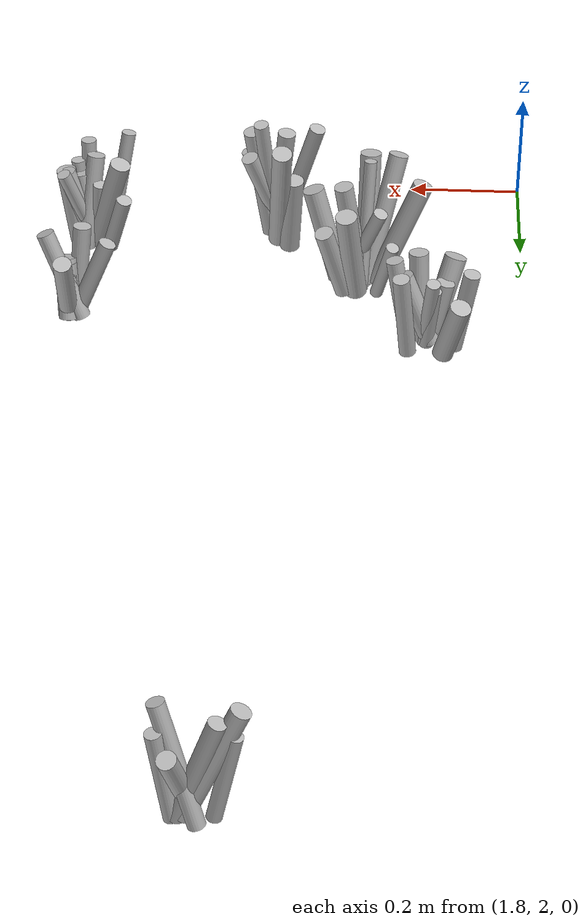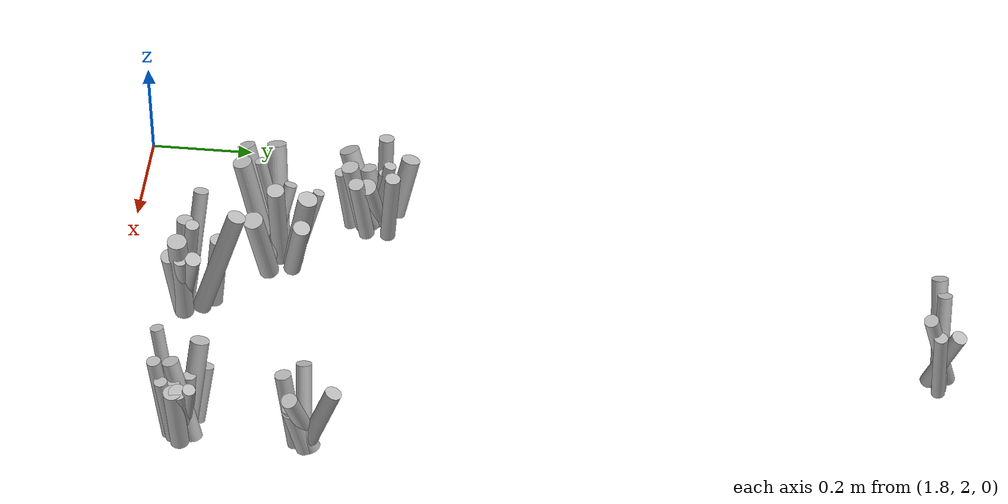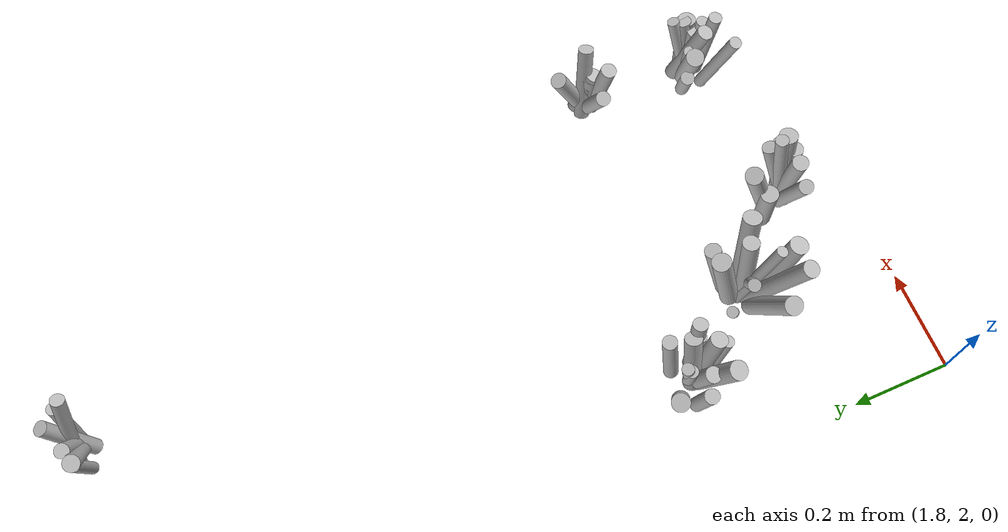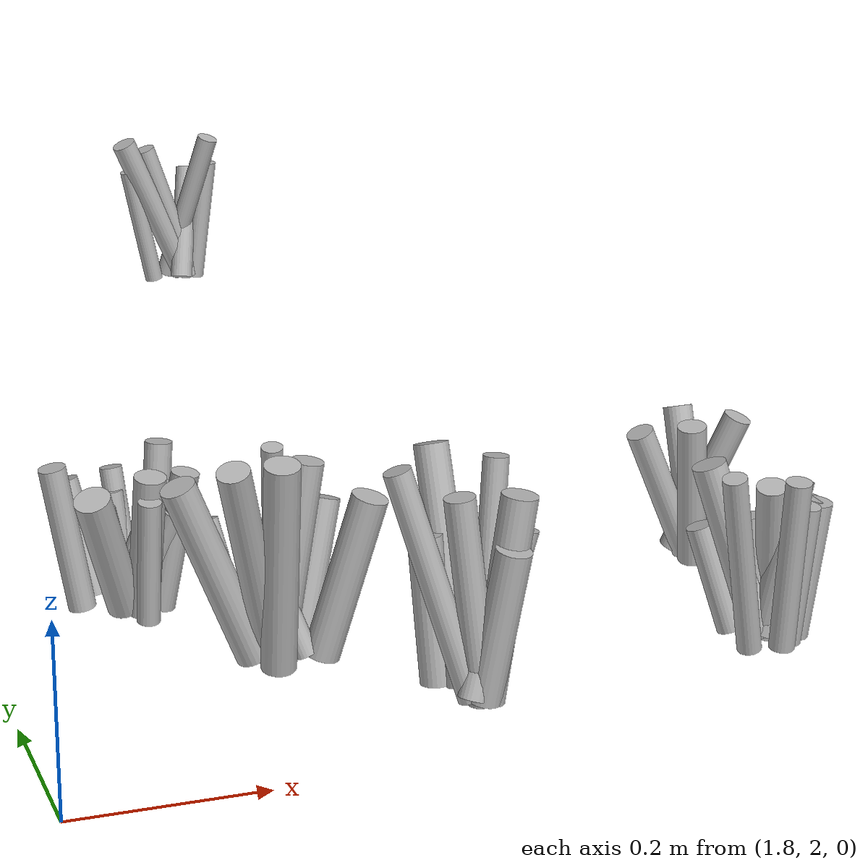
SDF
<sdf version="1.6">
 <world name="default">
  <model name="tussocks">
   <static>true</static>
   <link name="tuft21_0">
    <pose>2.1068 2.2990 0.0979 0 0.1649 0.0395</pose>
    <visual name="tuft21_0_v">
     <geometry><cylinder><radius>0.0170</radius><length>0.2129</length></cylinder></geometry>
     <material>
      <script>
       <uri>model://bushfire/materials/scripts</uri>
       <uri>model://bushfire/materials/textures</uri>
       <name>Bushfire/Tussock</name>
      </script>
     </material>
    </visual>
   </link>
   <link name="tuft21_1">
    <pose>2.1084 2.3420 0.0878 0 0.2273 1.0967</pose>
    <visual name="tuft21_1_v">
     <geometry><cylinder><radius>0.0193</radius><length>0.1908</length></cylinder></geometry>
     <material>
      <script>
       <uri>model://bushfire/materials/scripts</uri>
       <uri>model://bushfire/materials/textures</uri>
       <name>Bushfire/Foliage2</name>
      </script>
     </material>
    </visual>
   </link>
   <link name="tuft21_2">
    <pose>2.0490 2.3510 0.0612 0 0.3571 2.1810</pose>
    <visual name="tuft21_2_v">
     <geometry><cylinder><radius>0.0115</radius><length>0.1331</length></cylinder></geometry>
     <material>
      <script>
       <uri>model://bushfire/materials/scripts</uri>
       <uri>model://bushfire/materials/textures</uri>
       <name>Bushfire/Tussock</name>
      </script>
     </material>
    </visual>
   </link>
   <link name="tuft21_3">
    <pose>2.0834 2.2884 0.1138 0 0.1913 4.4650</pose>
    <visual name="tuft21_3_v">
     <geometry><cylinder><radius>0.0111</radius><length>0.2474</length></cylinder></geometry>
     <material>
      <script>
       <uri>model://bushfire/materials/scripts</uri>
       <uri>model://bushfire/materials/textures</uri>
       <name>Bushfire/Foliage2</name>
      </script>
     </material>
    </visual>
   </link>
   <link name="tuft21_4">
    <pose>2.0857 2.2984 0.0802 0 0.4076 2.5041</pose>
    <visual name="tuft21_4_v">
     <geometry><cylinder><radius>0.0129</radius><length>0.1744</length></cylinder></geometry>
     <material>
      <script>
       <uri>model://bushfire/materials/scripts</uri>
       <uri>model://bushfire/materials/textures</uri>
       <name>Bushfire/Foliage2</name>
      </script>
     </material>
    </visual>
   </link>
   <link name="tuft21_5">
    <pose>2.0804 2.2519 0.1108 0 0.1900 4.5943</pose>
    <visual name="tuft21_5_v">
     <geometry><cylinder><radius>0.0187</radius><length>0.2408</length></cylinder></geometry>
     <material>
      <script>
       <uri>model://bushfire/materials/scripts</uri>
       <uri>model://bushfire/materials/textures</uri>
       <name>Bushfire/Tussock</name>
      </script>
     </material>
    </visual>
   </link>
   <link name="tuft21_6">
    <pose>2.1544 2.2719 0.0838 0 0.2844 5.9164</pose>
    <visual name="tuft21_6_v">
     <geometry><cylinder><radius>0.0193</radius><length>0.1821</length></cylinder></geometry>
     <material>
      <script>
       <uri>model://bushfire/materials/scripts</uri>
       <uri>model://bushfire/materials/textures</uri>
       <name>Bushfire/Tussock</name>
      </script>
     </material>
    </visual>
   </link>
   <link name="tuft21_7">
    <pose>2.0237 2.2887 0.0985 0 0.3792 3.2935</pose>
    <visual name="tuft21_7_v">
     <geometry><cylinder><radius>0.0187</radius><length>0.2141</length></cylinder></geometry>
     <material>
      <script>
       <uri>model://bushfire/materials/scripts</uri>
       <uri>model://bushfire/materials/textures</uri>
       <name>Bushfire/Tussock</name>
      </script>
     </material>
    </visual>
   </link>
   <link name="tuft21_8">
    <pose>2.0552 2.2620 0.1127 0 0.3485 4.0088</pose>
    <visual name="tuft21_8_v">
     <geometry><cylinder><radius>0.0174</radius><length>0.2450</length></cylinder></geometry>
     <material>
      <script>
       <uri>model://bushfire/materials/scripts</uri>
       <uri>model://bushfire/materials/textures</uri>
       <name>Bushfire/Tussock</name>
      </script>
     </material>
    </visual>
   </link>
   <link name="tuft21_9">
    <pose>2.1387 2.3391 0.0688 0 0.3157 0.6587</pose>
    <visual name="tuft21_9_v">
     <geometry><cylinder><radius>0.0168</radius><length>0.1497</length></cylinder></geometry>
     <material>
      <script>
       <uri>model://bushfire/materials/scripts</uri>
       <uri>model://bushfire/materials/textures</uri>
       <name>Bushfire/Foliage2</name>
      </script>
     </material>
    </visual>
   </link>
   <link name="tuft36_1">
    <pose>2.2756 3.5906 0.0996 0 0.4036 3.2823</pose>
    <visual name="tuft36_1_v">
     <geometry><cylinder><radius>0.0161</radius><length>0.2164</length></cylinder></geometry>
     <material>
      <script>
       <uri>model://bushfire/materials/scripts</uri>
       <uri>model://bushfire/materials/textures</uri>
       <name>Bushfire/Foliage2</name>
      </script>
     </material>
    </visual>
   </link>
   <link name="tuft36_2">
    <pose>2.2971 3.5967 0.0916 0 0.3204 3.1450</pose>
    <visual name="tuft36_2_v">
     <geometry><cylinder><radius>0.0142</radius><length>0.1991</length></cylinder></geometry>
     <material>
      <script>
       <uri>model://bushfire/materials/scripts</uri>
       <uri>model://bushfire/materials/textures</uri>
       <name>Bushfire/Tussock</name>
      </script>
     </material>
    </visual>
   </link>
   <link name="tuft36_3">
    <pose>2.3247 3.5933 0.0990 0 0.3194 5.6794</pose>
    <visual name="tuft36_3_v">
     <geometry><cylinder><radius>0.0140</radius><length>0.2153</length></cylinder></geometry>
     <material>
      <script>
       <uri>model://bushfire/materials/scripts</uri>
       <uri>model://bushfire/materials/textures</uri>
       <name>Bushfire/Foliage2</name>
      </script>
     </material>
    </visual>
   </link>
   <link name="tuft36_4">
    <pose>2.3443 3.5953 0.0774 0 0.1320 6.2205</pose>
    <visual name="tuft36_4_v">
     <geometry><cylinder><radius>0.0131</radius><length>0.1683</length></cylinder></geometry>
     <material>
      <script>
       <uri>model://bushfire/materials/scripts</uri>
       <uri>model://bushfire/materials/textures</uri>
       <name>Bushfire/Foliage2</name>
      </script>
     </material>
    </visual>
   </link>
   <link name="tuft36_5">
    <pose>2.3218 3.6017 0.0725 0 0.3979 1.1377</pose>
    <visual name="tuft36_5_v">
     <geometry><cylinder><radius>0.0151</radius><length>0.1577</length></cylinder></geometry>
     <material>
      <script>
       <uri>model://bushfire/materials/scripts</uri>
       <uri>model://bushfire/materials/textures</uri>
       <name>Bushfire/Foliage2</name>
      </script>
     </material>
    </visual>
   </link>
   <link name="tuft36_6">
    <pose>2.2576 3.5931 0.0759 0 0.1980 3.2017</pose>
    <visual name="tuft36_6_v">
     <geometry><cylinder><radius>0.0122</radius><length>0.1650</length></cylinder></geometry>
     <material>
      <script>
       <uri>model://bushfire/materials/scripts</uri>
       <uri>model://bushfire/materials/textures</uri>
       <name>Bushfire/Tussock</name>
      </script>
     </material>
    </visual>
   </link>
   <link name="tuft52_0">
    <pose>1.9313 2.5214 0.0586 0 0.3179 2.3043</pose>
    <visual name="tuft52_0_v">
     <geometry><cylinder><radius>0.0184</radius><length>0.1275</length></cylinder></geometry>
     <material>
      <script>
       <uri>model://bushfire/materials/scripts</uri>
       <uri>model://bushfire/materials/textures</uri>
       <name>Bushfire/Tussock</name>
      </script>
     </material>
    </visual>
   </link>
   <link name="tuft52_1">
    <pose>1.9909 2.4675 0.0646 0 0.3829 6.0849</pose>
    <visual name="tuft52_1_v">
     <geometry><cylinder><radius>0.0177</radius><length>0.1404</length></cylinder></geometry>
     <material>
      <script>
       <uri>model://bushfire/materials/scripts</uri>
       <uri>model://bushfire/materials/textures</uri>
       <name>Bushfire/Tussock</name>
      </script>
     </material>
    </visual>
   </link>
   <link name="tuft52_2">
    <pose>1.9121 2.4837 0.0743 0 0.1631 2.9366</pose>
    <visual name="tuft52_2_v">
     <geometry><cylinder><radius>0.0149</radius><length>0.1616</length></cylinder></geometry>
     <material>
      <script>
       <uri>model://bushfire/materials/scripts</uri>
       <uri>model://bushfire/materials/textures</uri>
       <name>Bushfire/Tussock</name>
      </script>
     </material>
    </visual>
   </link>
   <link name="tuft52_3">
    <pose>2.0024 2.4545 0.0523 0 0.3843 5.7211</pose>
    <visual name="tuft52_3_v">
     <geometry><cylinder><radius>0.0137</radius><length>0.1136</length></cylinder></geometry>
     <material>
      <script>
       <uri>model://bushfire/materials/scripts</uri>
       <uri>model://bushfire/materials/textures</uri>
       <name>Bushfire/Foliage2</name>
      </script>
     </material>
    </visual>
   </link>
   <link name="tuft52_4">
    <pose>1.9711 2.4862 0.0690 0 0.2185 1.9531</pose>
    <visual name="tuft52_4_v">
     <geometry><cylinder><radius>0.0121</radius><length>0.1500</length></cylinder></geometry>
     <material>
      <script>
       <uri>model://bushfire/materials/scripts</uri>
       <uri>model://bushfire/materials/textures</uri>
       <name>Bushfire/Tussock</name>
      </script>
     </material>
    </visual>
   </link>
   <link name="tuft52_5">
    <pose>2.0131 2.5059 0.0770 0 0.1331 0.7888</pose>
    <visual name="tuft52_5_v">
     <geometry><cylinder><radius>0.0148</radius><length>0.1673</length></cylinder></geometry>
     <material>
      <script>
       <uri>model://bushfire/materials/scripts</uri>
       <uri>model://bushfire/materials/textures</uri>
       <name>Bushfire/Tussock</name>
      </script>
     </material>
    </visual>
   </link>
   <link name="tuft52_6">
    <pose>1.9871 2.4376 0.0747 0 0.1521 4.9970</pose>
    <visual name="tuft52_6_v">
     <geometry><cylinder><radius>0.0172</radius><length>0.1624</length></cylinder></geometry>
     <material>
      <script>
       <uri>model://bushfire/materials/scripts</uri>
       <uri>model://bushfire/materials/textures</uri>
       <name>Bushfire/Tussock</name>
      </script>
     </material>
    </visual>
   </link>
   <link name="tuft52_7">
    <pose>1.9465 2.4373 0.0707 0 0.3987 3.9551</pose>
    <visual name="tuft52_7_v">
     <geometry><cylinder><radius>0.0198</radius><length>0.1537</length></cylinder></geometry>
     <material>
      <script>
       <uri>model://bushfire/materials/scripts</uri>
       <uri>model://bushfire/materials/textures</uri>
       <name>Bushfire/Tussock</name>
      </script>
     </material>
    </visual>
   </link>
   <link name="tuft52_8">
    <pose>1.9679 2.4833 0.0577 0 0.1463 2.2042</pose>
    <visual name="tuft52_8_v">
     <geometry><cylinder><radius>0.0125</radius><length>0.1253</length></cylinder></geometry>
     <material>
      <script>
       <uri>model://bushfire/materials/scripts</uri>
       <uri>model://bushfire/materials/textures</uri>
       <name>Bushfire/Tussock</name>
      </script>
     </material>
    </visual>
   </link>
   <link name="tuft52_9">
    <pose>1.9553 2.4603 0.0547 0 0.2382 3.5570</pose>
    <visual name="tuft52_9_v">
     <geometry><cylinder><radius>0.0164</radius><length>0.1188</length></cylinder></geometry>
     <material>
      <script>
       <uri>model://bushfire/materials/scripts</uri>
       <uri>model://bushfire/materials/textures</uri>
       <name>Bushfire/Foliage2</name>
      </script>
     </material>
    </visual>
   </link>
   <link name="tuft52_10">
    <pose>2.0185 2.4499 0.0721 0 0.1960 5.8239</pose>
    <visual name="tuft52_10_v">
     <geometry><cylinder><radius>0.0152</radius><length>0.1568</length></cylinder></geometry>
     <material>
      <script>
       <uri>model://bushfire/materials/scripts</uri>
       <uri>model://bushfire/materials/textures</uri>
       <name>Bushfire/Tussock</name>
      </script>
     </material>
    </visual>
   </link>
   <link name="tuft52_11">
    <pose>1.9840 2.4148 0.0648 0 0.1116 4.8297</pose>
    <visual name="tuft52_11_v">
     <geometry><cylinder><radius>0.0125</radius><length>0.1408</length></cylinder></geometry>
     <material>
      <script>
       <uri>model://bushfire/materials/scripts</uri>
       <uri>model://bushfire/materials/textures</uri>
       <name>Bushfire/Tussock</name>
      </script>
     </material>
    </visual>
   </link>
   <link name="tuft90_0">
    <pose>2.6069 2.4080 0.0468 0 0.2329 4.8940</pose>
    <visual name="tuft90_0_v">
     <geometry><cylinder><radius>0.0200</radius><length>0.1018</length></cylinder></geometry>
     <material>
      <script>
       <uri>model://bushfire/materials/scripts</uri>
       <uri>model://bushfire/materials/textures</uri>
       <name>Bushfire/Tussock</name>
      </script>
     </material>
    </visual>
   </link>
   <link name="tuft90_1">
    <pose>2.6124 2.4114 0.0780 0 0.4019 5.8365</pose>
    <visual name="tuft90_1_v">
     <geometry><cylinder><radius>0.0157</radius><length>0.1696</length></cylinder></geometry>
     <material>
      <script>
       <uri>model://bushfire/materials/scripts</uri>
       <uri>model://bushfire/materials/textures</uri>
       <name>Bushfire/Foliage2</name>
      </script>
     </material>
    </visual>
   </link>
   <link name="tuft90_2">
    <pose>2.6059 2.4111 0.0515 0 0.3305 4.7719</pose>
    <visual name="tuft90_2_v">
     <geometry><cylinder><radius>0.0176</radius><length>0.1119</length></cylinder></geometry>
     <material>
      <script>
       <uri>model://bushfire/materials/scripts</uri>
       <uri>model://bushfire/materials/textures</uri>
       <name>Bushfire/Tussock</name>
      </script>
     </material>
    </visual>
   </link>
   <link name="tuft90_4">
    <pose>2.5623 2.4117 0.0731 0 0.3908 3.2102</pose>
    <visual name="tuft90_4_v">
     <geometry><cylinder><radius>0.0152</radius><length>0.1590</length></cylinder></geometry>
     <material>
      <script>
       <uri>model://bushfire/materials/scripts</uri>
       <uri>model://bushfire/materials/textures</uri>
       <name>Bushfire/Tussock</name>
      </script>
     </material>
    </visual>
   </link>
   <link name="tuft90_6">
    <pose>2.6051 2.4460 0.0728 0 0.3757 1.5875</pose>
    <visual name="tuft90_6_v">
     <geometry><cylinder><radius>0.0163</radius><length>0.1583</length></cylinder></geometry>
     <material>
      <script>
       <uri>model://bushfire/materials/scripts</uri>
       <uri>model://bushfire/materials/textures</uri>
       <name>Bushfire/Foliage2</name>
      </script>
     </material>
    </visual>
   </link>
   <link name="tuft90_8">
    <pose>2.5864 2.3872 0.0769 0 0.1564 4.1016</pose>
    <visual name="tuft90_8_v">
     <geometry><cylinder><radius>0.0159</radius><length>0.1673</length></cylinder></geometry>
     <material>
      <script>
       <uri>model://bushfire/materials/scripts</uri>
       <uri>model://bushfire/materials/textures</uri>
       <name>Bushfire/Tussock</name>
      </script>
     </material>
    </visual>
   </link>
   <link name="tuft125_0">
    <pose>2.2087 2.1503 0.1155 0 0.3009 2.7484</pose>
    <visual name="tuft125_0_v">
     <geometry><cylinder><radius>0.0145</radius><length>0.2511</length></cylinder></geometry>
     <material>
      <script>
       <uri>model://bushfire/materials/scripts</uri>
       <uri>model://bushfire/materials/textures</uri>
       <name>Bushfire/Tussock</name>
      </script>
     </material>
    </visual>
   </link>
   <link name="tuft125_2">
    <pose>2.2683 2.1453 0.0847 0 0.3801 0.5865</pose>
    <visual name="tuft125_2_v">
     <geometry><cylinder><radius>0.0154</radius><length>0.1841</length></cylinder></geometry>
     <material>
      <script>
       <uri>model://bushfire/materials/scripts</uri>
       <uri>model://bushfire/materials/textures</uri>
       <name>Bushfire/Tussock</name>
      </script>
     </material>
    </visual>
   </link>
   <link name="tuft125_3">
    <pose>2.2738 2.1337 0.1001 0 0.1557 0.0234</pose>
    <visual name="tuft125_3_v">
     <geometry><cylinder><radius>0.0189</radius><length>0.2176</length></cylinder></geometry>
     <material>
      <script>
       <uri>model://bushfire/materials/scripts</uri>
       <uri>model://bushfire/materials/textures</uri>
       <name>Bushfire/Foliage2</name>
      </script>
     </material>
    </visual>
   </link>
   <link name="tuft125_5">
    <pose>2.2195 2.1935 0.0715 0 0.1200 2.0396</pose>
    <visual name="tuft125_5_v">
     <geometry><cylinder><radius>0.0179</radius><length>0.1555</length></cylinder></geometry>
     <material>
      <script>
       <uri>model://bushfire/materials/scripts</uri>
       <uri>model://bushfire/materials/textures</uri>
       <name>Bushfire/Foliage2</name>
      </script>
     </material>
    </visual>
   </link>
   <link name="tuft125_6">
    <pose>2.2664 2.1239 0.0760 0 0.1758 5.7667</pose>
    <visual name="tuft125_6_v">
     <geometry><cylinder><radius>0.0186</radius><length>0.1653</length></cylinder></geometry>
     <material>
      <script>
       <uri>model://bushfire/materials/scripts</uri>
       <uri>model://bushfire/materials/textures</uri>
       <name>Bushfire/Foliage2</name>
      </script>
     </material>
    </visual>
   </link>
   <link name="tuft125_7">
    <pose>2.2632 2.1483 0.1158 0 0.1543 0.8591</pose>
    <visual name="tuft125_7_v">
     <geometry><cylinder><radius>0.0132</radius><length>0.2517</length></cylinder></geometry>
     <material>
      <script>
       <uri>model://bushfire/materials/scripts</uri>
       <uri>model://bushfire/materials/textures</uri>
       <name>Bushfire/Tussock</name>
      </script>
     </material>
    </visual>
   </link>
   <link name="tuft125_8">
    <pose>2.2729 2.1362 0.0829 0 0.3058 0.1342</pose>
    <visual name="tuft125_8_v">
     <geometry><cylinder><radius>0.0134</radius><length>0.1802</length></cylinder></geometry>
     <material>
      <script>
       <uri>model://bushfire/materials/scripts</uri>
       <uri>model://bushfire/materials/textures</uri>
       <name>Bushfire/Tussock</name>
      </script>
     </material>
    </visual>
   </link>
   <link name="tuft125_9">
    <pose>2.2421 2.1362 0.1008 0 0.1150 2.7750</pose>
    <visual name="tuft125_9_v">
     <geometry><cylinder><radius>0.0161</radius><length>0.2192</length></cylinder></geometry>
     <material>
      <script>
       <uri>model://bushfire/materials/scripts</uri>
       <uri>model://bushfire/materials/textures</uri>
       <name>Bushfire/Foliage2</name>
      </script>
     </material>
    </visual>
   </link>
   <link name="tuft125_10">
    <pose>2.2402 2.2034 0.1132 0 0.3173 1.7096</pose>
    <visual name="tuft125_10_v">
     <geometry><cylinder><radius>0.0180</radius><length>0.2461</length></cylinder></geometry>
     <material>
      <script>
       <uri>model://bushfire/materials/scripts</uri>
       <uri>model://bushfire/materials/textures</uri>
       <name>Bushfire/Tussock</name>
      </script>
     </material>
    </visual>
   </link>
   <link name="tuft167_0">
    <pose>2.6054 2.1571 0.0715 0 0.1102 5.3019</pose>
    <visual name="tuft167_0_v">
     <geometry><cylinder><radius>0.0128</radius><length>0.1555</length></cylinder></geometry>
     <material>
      <script>
       <uri>model://bushfire/materials/scripts</uri>
       <uri>model://bushfire/materials/textures</uri>
       <name>Bushfire/Foliage2</name>
      </script>
     </material>
    </visual>
   </link>
   <link name="tuft167_1">
    <pose>2.5725 2.1935 0.0609 0 0.1013 2.6182</pose>
    <visual name="tuft167_1_v">
     <geometry><cylinder><radius>0.0127</radius><length>0.1324</length></cylinder></geometry>
     <material>
      <script>
       <uri>model://bushfire/materials/scripts</uri>
       <uri>model://bushfire/materials/textures</uri>
       <name>Bushfire/Tussock</name>
      </script>
     </material>
    </visual>
   </link>
   <link name="tuft167_2">
    <pose>2.6204 2.1773 0.0686 0 0.1340 6.0514</pose>
    <visual name="tuft167_2_v">
     <geometry><cylinder><radius>0.0179</radius><length>0.1490</length></cylinder></geometry>
     <material>
      <script>
       <uri>model://bushfire/materials/scripts</uri>
       <uri>model://bushfire/materials/textures</uri>
       <name>Bushfire/Foliage2</name>
      </script>
     </material>
    </visual>
   </link>
   <link name="tuft167_3">
    <pose>2.5901 2.1456 0.0878 0 0.1053 4.8020</pose>
    <visual name="tuft167_3_v">
     <geometry><cylinder><radius>0.0137</radius><length>0.1908</length></cylinder></geometry>
     <material>
      <script>
       <uri>model://bushfire/materials/scripts</uri>
       <uri>model://bushfire/materials/textures</uri>
       <name>Bushfire/Tussock</name>
      </script>
     </material>
    </visual>
   </link>
   <link name="tuft167_4">
    <pose>2.5928 2.1783 0.0645 0 0.2074 5.4401</pose>
    <visual name="tuft167_4_v">
     <geometry><cylinder><radius>0.0177</radius><length>0.1401</length></cylinder></geometry>
     <material>
      <script>
       <uri>model://bushfire/materials/scripts</uri>
       <uri>model://bushfire/materials/textures</uri>
       <name>Bushfire/Tussock</name>
      </script>
     </material>
    </visual>
   </link>
   <link name="tuft167_5">
    <pose>2.5861 2.1846 0.0826 0 0.2615 4.2116</pose>
    <visual name="tuft167_5_v">
     <geometry><cylinder><radius>0.0162</radius><length>0.1796</length></cylinder></geometry>
     <material>
      <script>
       <uri>model://bushfire/materials/scripts</uri>
       <uri>model://bushfire/materials/textures</uri>
       <name>Bushfire/Foliage2</name>
      </script>
     </material>
    </visual>
   </link>
   <link name="tuft167_6">
    <pose>2.6060 2.1950 0.0760 0 0.3412 0.4581</pose>
    <visual name="tuft167_6_v">
     <geometry><cylinder><radius>0.0123</radius><length>0.1651</length></cylinder></geometry>
     <material>
      <script>
       <uri>model://bushfire/materials/scripts</uri>
       <uri>model://bushfire/materials/textures</uri>
       <name>Bushfire/Tussock</name>
      </script>
     </material>
    </visual>
   </link>
   <link name="tuft167_7">
    <pose>2.6056 2.1851 0.0707 0 0.3109 6.2723</pose>
    <visual name="tuft167_7_v">
     <geometry><cylinder><radius>0.0171</radius><length>0.1537</length></cylinder></geometry>
     <material>
      <script>
       <uri>model://bushfire/materials/scripts</uri>
       <uri>model://bushfire/materials/textures</uri>
       <name>Bushfire/Foliage2</name>
      </script>
     </material>
    </visual>
   </link>
   <link name="tuft167_8">
    <pose>2.5530 2.2009 0.0893 0 0.3088 2.7064</pose>
    <visual name="tuft167_8_v">
     <geometry><cylinder><radius>0.0183</radius><length>0.1942</length></cylinder></geometry>
     <material>
      <script>
       <uri>model://bushfire/materials/scripts</uri>
       <uri>model://bushfire/materials/textures</uri>
       <name>Bushfire/Tussock</name>
      </script>
     </material>
    </visual>
   </link>
   <link name="tuft167_9">
    <pose>2.5361 2.1456 0.0960 0 0.2315 3.8092</pose>
    <visual name="tuft167_9_v">
     <geometry><cylinder><radius>0.0129</radius><length>0.2087</length></cylinder></geometry>
     <material>
      <script>
       <uri>model://bushfire/materials/scripts</uri>
       <uri>model://bushfire/materials/textures</uri>
       <name>Bushfire/Foliage2</name>
      </script>
     </material>
    </visual>
   </link>
   <link name="tuft167_11">
    <pose>2.5373 2.2136 0.0546 0 0.3107 2.6210</pose>
    <visual name="tuft167_11_v">
     <geometry><cylinder><radius>0.0141</radius><length>0.1187</length></cylinder></geometry>
     <material>
      <script>
       <uri>model://bushfire/materials/scripts</uri>
       <uri>model://bushfire/materials/textures</uri>
       <name>Bushfire/Foliage2</name>
      </script>
     </material>
    </visual>
   </link>
  </model>
 </world>
</sdf>
